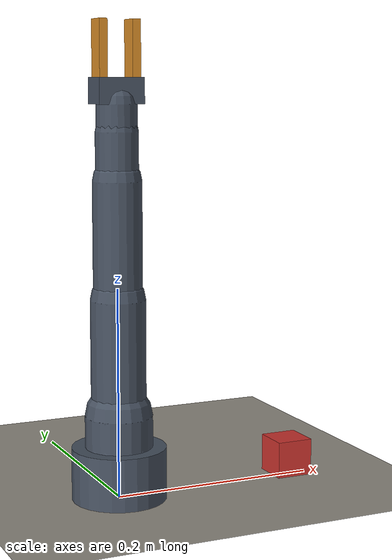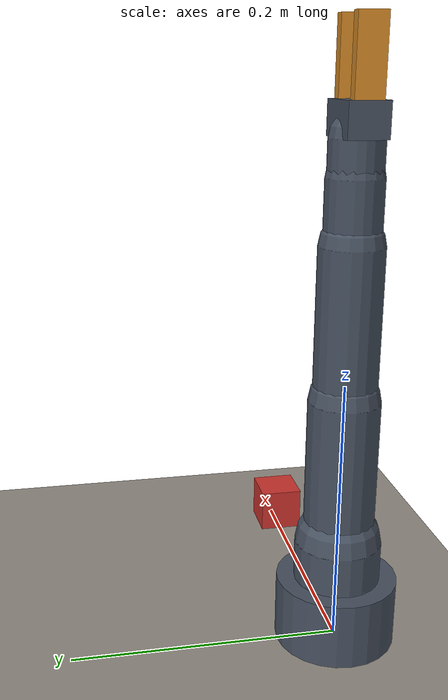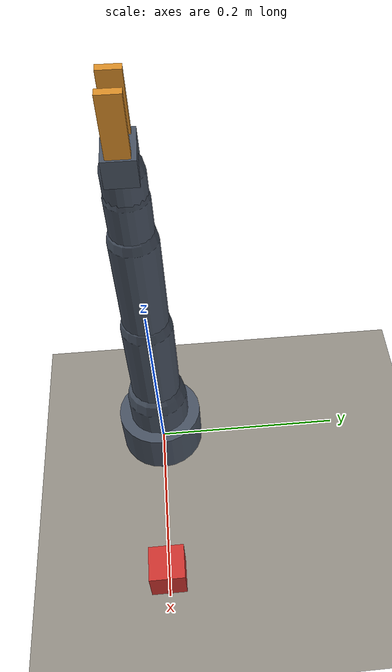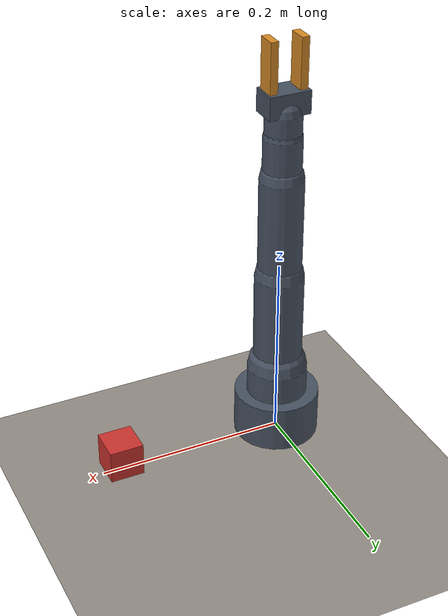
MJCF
<!-- Arm on a table, with a graspable cube and a third-person camera.

     Object placement lives here; randomisation of it arrives at Stage 4. -->
<mujoco model="so101_scene">
  <include file="so101.xml"/>

  <visual>
    <global offwidth="1280" offheight="960"/>
    <quality shadowsize="2048"/>
    <headlight ambient="0.35 0.35 0.35" diffuse="0.5 0.5 0.5"/>
  </visual>

  <asset>
    <texture name="skybox" type="skybox" builtin="gradient"
             rgb1="0.35 0.42 0.52" rgb2="0.10 0.12 0.16" width="256" height="256"/>
    <texture name="tabletop_tex" type="2d" builtin="checker"
             rgb1="0.62 0.60 0.56" rgb2="0.52 0.50 0.47" width="300" height="300"/>
    <material name="tabletop" texture="tabletop_tex" texrepeat="6 6" reflectance="0.05"/>
  </asset>

  <worldbody>
    <light name="key"  pos="0.35 0.25 0.9" dir="-0.35 -0.25 -0.9" diffuse="0.7 0.7 0.7"/>
    <light name="fill" pos="-0.3 -0.3 0.8" dir="0.3 0.3 -0.8"   diffuse="0.35 0.35 0.35"/>

    <geom name="tabletop" type="plane" size="0.6 0.6 0.02" material="tabletop"
          friction="1.0 0.01 0.001"/>

    <camera name="front" pos="0.75 0.35 0.45"
            xyaxes="-0.463018 0.886349 0.000000 -0.336311 -0.175685 0.925219" fovy="60"/>

    <body name="cube_red" pos="0.18 0.0 0.02">
      <freejoint name="cube_red_free"/>
      <geom name="cube_red_geom" type="box" size="0.018 0.018 0.018"
            rgba="0.80 0.20 0.18 1" density="400"
            friction="1.4 0.02 0.001" solimp="0.95 0.99 0.001" solref="0.005 1"/>
    </body>
  </worldbody>
</mujoco>

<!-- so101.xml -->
<mujoco model="so101">
  <compiler angle="radian" autolimits="true"/>
  <option timestep="0.0016666666666666668" integrator="implicitfast"/>

  <default>
    <default class="so101">
      <joint damping="1.2" armature="0.02" frictionloss="0.02"/>
      <position kp="30" dampratio="1" forcerange="-12 12"/>
      <geom type="capsule" rgba="0.28 0.32 0.38 1" density="900"
            friction="1.0 0.01 0.001"/>
    </default>
    <default class="finger">
      <geom type="box" rgba="0.85 0.55 0.15 1" density="600"
            friction="2.0 0.05 0.001" solimp="0.95 0.99 0.001" solref="0.004 1"/>
    </default>
  </default>

  <worldbody>
    <body name="base" pos="0 0 0" childclass="so101">
      <geom name="base_geom" type="cylinder" size="0.045 0.025" pos="0 0 0.025"/>

      <body name="shoulder_pan_link" pos="0 0 0.05">
        <joint name="shoulder_pan" axis="0 0 1" range="-1.92 1.92"/>
        <geom name="shoulder_pan_geom" fromto="0 0 0 0 0 0.03" size="0.032"/>

        <body name="shoulder_lift_link" pos="0 0 0.03">
          <joint name="shoulder_lift" axis="0 1 0" range="-1.75 1.75"/>
          <geom name="upper_arm_geom" fromto="0 0 0 0 0 0.11" size="0.026"/>

          <body name="elbow_flex_link" pos="0 0 0.11">
            <joint name="elbow_flex" axis="0 1 0" range="-1.69 1.69"/>
            <geom name="forearm_geom" fromto="0 0 0 0 0 0.11" size="0.023"/>

            <body name="wrist_flex_link" pos="0 0 0.11">
              <joint name="wrist_flex" axis="0 1 0" range="-1.66 1.66"/>
              <geom name="wrist_geom" fromto="0 0 0 0 0 0.045" size="0.020"/>

              <body name="wrist_roll_link" pos="0 0 0.045">
                <joint name="wrist_roll" axis="0 0 1" range="-2.79 2.79"/>
                <geom name="wrist_roll_geom" fromto="0 0 0 0 0 0.025" size="0.019"/>

                <body name="gripper_link" pos="0 0 0.025">
                  <geom name="palm_geom" type="box" size="0.022 0.014 0.012"
                        pos="0 0 0.012"/>

                  <camera name="wrist" pos="0 -0.030 0.010"
                          xyaxes="1.000000 0.000000 -0.000000 0.000000 -0.857493 0.514496"
                          fovy="75"/>

                  <!-- Fixed jaw. -->
                  <geom name="finger_static" class="finger"
                        size="0.004 0.010 0.026" pos="-0.016 0 0.050"/>

                  <!-- Moving jaw. Closes as the joint value increases, so
                       gripper_range in the spec reads open -> closed. -->
                  <body name="finger_moving_link" pos="0.016 0 0.024">
                    <joint name="gripper" type="slide" axis="-1 0 0"
                           range="0 0.024" damping="8" armature="0.005"/>
                    <geom name="finger_moving" class="finger"
                          size="0.004 0.010 0.026" pos="0 0 0.026"/>
                  </body>
                </body>
              </body>
            </body>
          </body>
        </body>
      </body>
    </body>
  </worldbody>

  <contact>
    <exclude body1="base" body2="shoulder_pan_link"/>
  </contact>

  <actuator>
    <position class="so101" name="shoulder_pan"  joint="shoulder_pan"  ctrlrange="-1.92 1.92"/>
    <position class="so101" name="shoulder_lift" joint="shoulder_lift" ctrlrange="-1.75 1.75"/>
    <position class="so101" name="elbow_flex"    joint="elbow_flex"    ctrlrange="-1.69 1.69"/>
    <position class="so101" name="wrist_flex"    joint="wrist_flex"    ctrlrange="-1.66 1.66"/>
    <position class="so101" name="wrist_roll"    joint="wrist_roll"    ctrlrange="-2.79 2.79"/>
    <position name="gripper" joint="gripper" ctrlrange="0 0.024" kp="120" dampratio="1"
              forcerange="-25 25"/>
  </actuator>
</mujoco>
